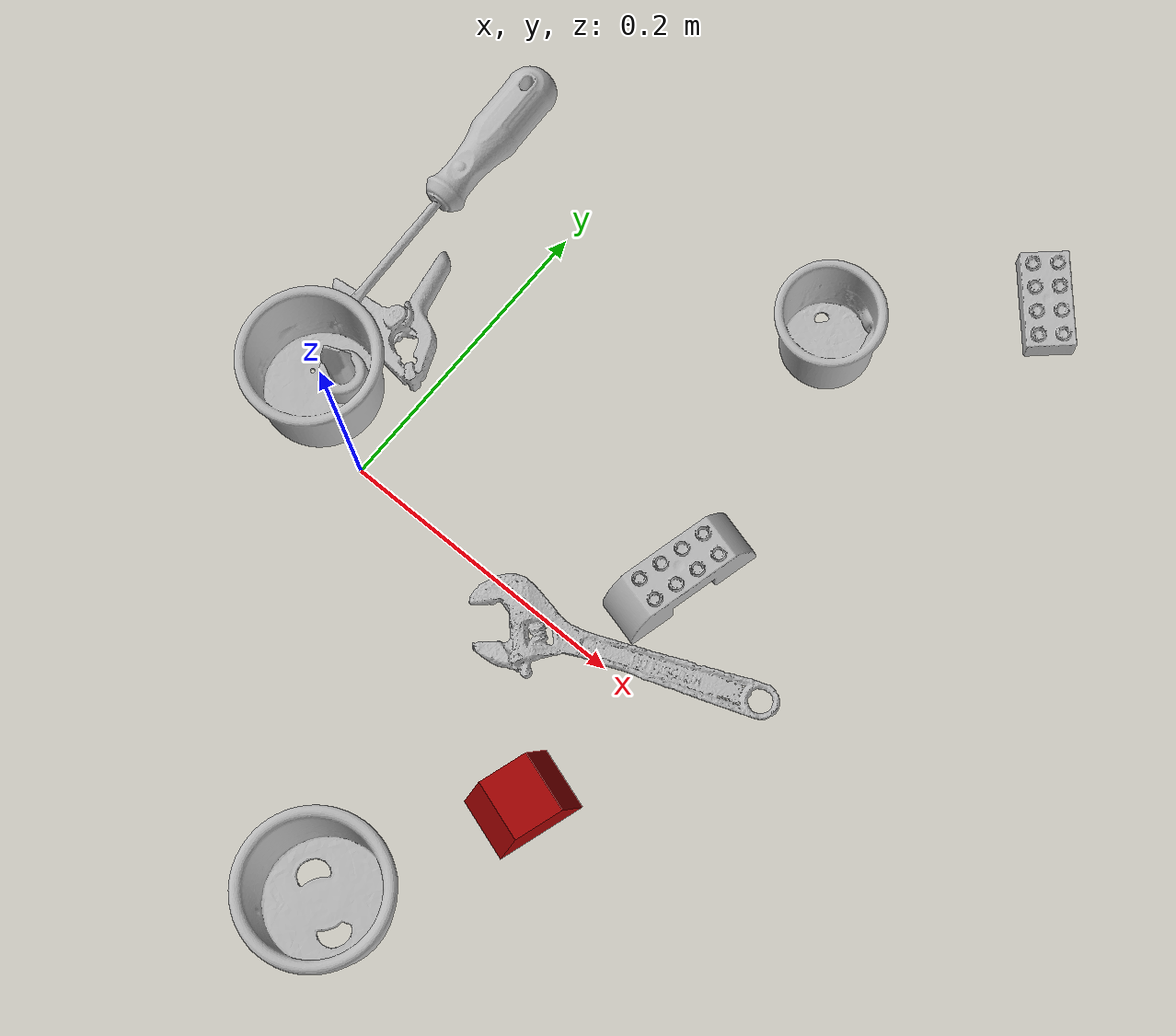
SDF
<sdf version="1.4">
  <world name="default">
    <light name="light1" type="point">
      <pose>0 0 1 0 0 0</pose>
      <diffuse>3 3 3 1</diffuse>
      <specular>3 3 3 1</specular>
    </light>
    <light name="light2" type="point">
      <pose>0 0.5 2 0 0 0</pose>
      <diffuse>1 1 1 1</diffuse>
      <specular>1 1 1 1</specular>
    </light>
    <light name="light3" type="point">
      <pose>0 0.5 2 0 0 0</pose>
      <diffuse>3 3 3 1</diffuse>
      <specular>3 3 3 1</specular>
    </light>
    <scene>
      <ambient>0.7 0.7 0.7</ambient>
    </scene>
    <model name="cup1">
      <link name="link_cup1">
        <collision name="default">
          <geometry>
            <mesh>
              <uri>model://d_cups/collision_meshes/collision.obj</uri>
              <scale>1.0 1.0 1.0</scale>
            </mesh>
          </geometry>
          <surface>
            <friction>
              <ode>
                <mu>0.5</mu>
                <mu2>0.5</mu2>
              </ode>
            </friction>
          <contact>
        <ode>
            <max_vel>0</max_vel>
            <min_depth>0.0001</min_depth>
            <kp>1e8</kp>
        </ode>
    </contact></surface>
        </collision>
        <visual name="default">
          <geometry>
            <mesh>
              <uri>model://d_cups/visual_meshes/visual.dae</uri>
              <scale>1.0 1.0 1.0</scale>
            </mesh>
          </geometry>
        </visual>
        <inertial>
          <mass>0.06783133745193481</mass>
          <pose>0.0008068059105426073 0.0019117397023364902 -0.002266651252284646 0.24012426461604838 -0.24709695541432683 0.5942481546461544</pose>
          <inertia>
            <ixx>5.679078e-05</ixx>
            <iyy>5.662642e-05</iyy>
            <izz>5.1405317e-05</izz>
            <ixy>0</ixy>
            <ixz>0</ixz>
            <iyz>0</iyz>
          </inertia>
        </inertial>
      </link>
      <pose>0.17518436908721924 0.2497675120830536 0.0346590057015419 2.4962270960707947e-08 -1.3483192533188287e-08 -1.3413213164640088</pose>
    </model>
    <model name="cup2">
      <link name="link_cup2">
        <collision name="default">
          <geometry>
            <mesh>
              <uri>model://h_cups/collision_meshes/collision.obj</uri>
              <scale>1.0 1.0 1.0</scale>
            </mesh>
          </geometry>
          <surface>
            <friction>
              <ode>
                <mu>0.5</mu>
                <mu2>0.5</mu2>
              </ode>
            </friction>
          <contact>
        <ode>
            <max_vel>0</max_vel>
            <min_depth>0.0001</min_depth>
            <kp>1e8</kp>
        </ode>
    </contact></surface>
        </collision>
        <visual name="default">
          <geometry>
            <mesh>
              <uri>model://h_cups/visual_meshes/visual.dae</uri>
              <scale>1.0 1.0 1.0</scale>
            </mesh>
          </geometry>
        </visual>
        <inertial>
          <mass>0.0420527309179306</mass>
          <pose>-2.702834171941504e-05 0.0002301869390066713 -0.0018405404407531023 -0.02436231807299455 0.06545237013505961 0.1288477560592675</pose>
          <inertia>
            <ixx>5.430915e-05</ixx>
            <iyy>5.3661057e-05</iyy>
            <izz>5.69554e-05</izz>
            <ixy>0</ixy>
            <ixz>0</ixz>
            <iyz>0</iyz>
          </inertia>
        </inertial>
      </link>
      <pose>-0.05276385322213173 0.02395559661090374 0.0377579964697361 -2.8928597444607135e-08 -3.6649149280841466e-07 -1.086454992639729</pose>
    </model>
    <model name="cup3">
      <link name="link_cup3">
        <collision name="default">
          <geometry>
            <mesh>
              <uri>model://i_cups/collision_meshes/collision.obj</uri>
              <scale>1.0 1.0 1.0</scale>
            </mesh>
          </geometry>
          <surface>
            <friction>
              <ode>
                <mu>0.5</mu>
                <mu2>0.5</mu2>
              </ode>
            </friction>
          <contact>
        <ode>
            <max_vel>0</max_vel>
            <min_depth>0.0001</min_depth>
            <kp>1e8</kp>
        </ode>
    </contact></surface>
        </collision>
        <visual name="default">
          <geometry>
            <mesh>
              <uri>model://i_cups/visual_meshes/visual.dae</uri>
              <scale>1.0 1.0 1.0</scale>
            </mesh>
          </geometry>
        </visual>
        <inertial>
          <mass>0.1172947883605957</mass>
          <pose>0.00011240218736929819 0.00016797319403849542 -0.0008579035638831556 -0.028982974239284674 -0.039873277979934216 -0.3459139003356122</pose>
          <inertia>
            <ixx>0.00016239638</ixx>
            <iyy>0.00016382721</iyy>
            <izz>0.00018150422</izz>
            <ixy>0</ixy>
            <ixz>0</ixz>
            <iyz>0</iyz>
          </inertia>
        </inertial>
      </link>
      <pose>0.1638517826795578 -0.21724000573158264 0.037774745374917984 0.001887553651022637 -0.006397428138433618 2.320500545484409</pose>
    </model>
    <model name="toy1">
      <link name="link_toy1">
        <collision name="default">
          <geometry>
            <mesh>
              <uri>model://prism/collision_meshes/collision.obj</uri>
              <scale>0.5 0.5 0.5</scale>
            </mesh>
          </geometry>
          <surface>
            <friction>
              <ode>
                <mu>0.5</mu>
                <mu2>0.5</mu2>
              </ode>
            </friction>
          <contact>
        <ode>
            <max_vel>0</max_vel>
            <min_depth>0.0001</min_depth>
            <kp>1e8</kp>
        </ode>
    </contact></surface>
        </collision>
        <visual name="default">
          <geometry>
            <mesh>
              <uri>model://prism/visual_meshes/visual.dae</uri>
              <scale>0.5 0.5 0.5</scale>
            </mesh>
          </geometry>
        </visual>
        <inertial>
          <mass>0.04854338616132736</mass>
          <pose>-4.92679828312248e-05 -2.480786349678965e-07 -0.0016934549203142524 0.0 0.006559181697473799 0.0</pose>
          <inertia>
            <ixx>1.0952453e-05</ixx>
            <iyy>1.3236178e-05</iyy>
            <izz>1.6212734e-05</izz>
            <ixy>0</ixy>
            <ixz>0</ixz>
            <iyz>0</iyz>
          </inertia>
        </inertial>
      </link>
      <pose>0.21597568690776825 -0.09652548283338547 0.016085000708699226 -7.696112358512864e-10 1.5544081147792204e-08 1.2598854037183491</pose>
    </model>
    <model name="toy2">
      <link name="link_toy2">
        <collision name="default">
          <geometry>
            <mesh>
              <uri>model://e_toy_airplane/collision_meshes/collision.obj</uri>
              <scale>1.0 1.0 1.0</scale>
            </mesh>
          </geometry>
          <surface>
            <friction>
              <ode>
                <mu>0.5</mu>
                <mu2>0.5</mu2>
              </ode>
            </friction>
          <contact>
        <ode>
            <max_vel>0</max_vel>
            <min_depth>0.0001</min_depth>
            <kp>1e8</kp>
        </ode>
    </contact></surface>
        </collision>
        <visual name="default">
          <geometry>
            <mesh>
              <uri>model://e_toy_airplane/visual_meshes/visual.dae</uri>
              <scale>1.0 1.0 1.0</scale>
            </mesh>
          </geometry>
        </visual>
        <inertial>
          <mass>0.014407381415367126</mass>
          <pose>0.00011740459740394726 -2.2482932763523422e-05 -0.011187206022441387 0.005518488041491648 0.009228285270614433 0.15041380385765837</pose>
          <inertia>
            <ixx>4.397297e-06</ixx>
            <iyy>4.352315e-06</iyy>
            <izz>1.3215607e-06</izz>
            <ixy>0</ixy>
            <ixz>0</ixz>
            <iyz>0</iyz>
          </inertia>
        </inertial>
      </link>
      <pose>-0.04449302703142166 0.03692278638482094 0.04165774583816528 0.0012530412141988879 0.0017674814223727002 -1.3028270236881538</pose>
    </model>
    <model name="toy3">
      <link name="link_toy3">
        <collision name="default">
          <geometry>
            <mesh>
              <uri>model://e_lego_duplo/collision_meshes/collision.obj</uri>
              <scale>1.0 1.0 1.0</scale>
            </mesh>
          </geometry>
          <surface>
            <friction>
              <ode>
                <mu>0.5</mu>
                <mu2>0.5</mu2>
              </ode>
            </friction>
          <contact>
        <ode>
            <max_vel>0</max_vel>
            <min_depth>0.0001</min_depth>
            <kp>1e8</kp>
        </ode>
    </contact></surface>
        </collision>
        <visual name="default">
          <geometry>
            <mesh>
              <uri>model://e_lego_duplo/visual_meshes/visual.dae</uri>
              <scale>1.0 1.0 1.0</scale>
            </mesh>
          </geometry>
        </visual>
        <inertial>
          <mass>0.059077512472867966</mass>
          <pose>0.00032560460385866463 0.0002348544221604243 0.0019521447829902172 -0.0225678114641467 -6.824730634042773e-05 -0.007625154901652298</pose>
          <inertia>
            <ixx>1.2319611e-05</ixx>
            <iyy>5.0562856e-05</iyy>
            <izz>4.923807e-05</izz>
            <ixy>0</ixy>
            <ixz>0</ixz>
            <iyz>0</iyz>
          </inertia>
        </inertial>
      </link>
      <pose>0.20047739148139954 0.07245167344808578 0.02180890366435051 1.0796257920028867e-06 8.211004678822176e-06 1.3191942004109813</pose>
    </model>
    <model name="toy4">
      <link name="link_toy4">
        <collision name="default">
          <geometry>
            <mesh>
              <uri>model://c_lego_duplo/collision_meshes/collision.obj</uri>
              <scale>1.0 1.0 1.0</scale>
            </mesh>
          </geometry>
          <surface>
            <friction>
              <ode>
                <mu>0.5</mu>
                <mu2>0.5</mu2>
              </ode>
            </friction>
          <contact>
        <ode>
            <max_vel>0</max_vel>
            <min_depth>0.0001</min_depth>
            <kp>1e8</kp>
        </ode>
    </contact></surface>
        </collision>
        <visual name="default">
          <geometry>
            <mesh>
              <uri>model://c_lego_duplo/visual_meshes/visual.dae</uri>
              <scale>1.0 1.0 1.0</scale>
            </mesh>
          </geometry>
        </visual>
        <inertial>
          <mass>0.019630447030067444</mass>
          <pose>0.000316459103487432 0.00019464583601802588 0.0010453149443492293 -0.011520787241280632 0.0059000791517924015 0.031100331826339908</pose>
          <inertia>
            <ixx>7.554163e-06</ixx>
            <iyy>2.4130718e-06</iyy>
            <izz>8.827816e-06</izz>
            <ixy>0</ixy>
            <ixz>0</ixz>
            <iyz>0</iyz>
          </inertia>
        </inertial>
      </link>
      <pose>0.2668968439102173 0.36021775007247925 0.011981488205492496 0.00801828562506546 -0.0020910701238088256 0.70343749729241</pose>
    </model>
    <model name="hardware1">
      <link name="link_hardware1">
        <collision name="default">
          <geometry>
            <mesh>
              <uri>model://flat_screwdriver/collision_meshes/collision.obj</uri>
              <scale>1.0 1.0 1.0</scale>
            </mesh>
          </geometry>
          <surface>
            <friction>
              <ode>
                <mu>0.5</mu>
                <mu2>0.5</mu2>
              </ode>
            </friction>
          <contact>
        <ode>
            <max_vel>0</max_vel>
            <min_depth>0.0001</min_depth>
            <kp>1e8</kp>
        </ode>
    </contact></surface>
        </collision>
        <visual name="default">
          <geometry>
            <mesh>
              <uri>model://flat_screwdriver/visual_meshes/visual.dae</uri>
              <scale>1.0 1.0 1.0</scale>
            </mesh>
          </geometry>
        </visual>
        <inertial>
          <mass>0.05795019492506981</mass>
          <pose>-0.0489187128841877 -0.0006576800369657576 -0.0006140916375443339 -0.5616548332173045 -0.0032337243504420286 0.0069822829580931615</pose>
          <inertia>
            <ixx>6.846775e-06</ixx>
            <iyy>8.6921296e-05</iyy>
            <izz>8.688106e-05</izz>
            <ixy>0</ixy>
            <ixz>0</ixz>
            <iyz>0</iyz>
          </inertia>
        </inertial>
      </link>
      <pose>-0.07508354634046555 0.1706942617893219 0.019171681255102158 -0.16918713043314215 -0.019851932414079232 -1.536010145723466</pose>
    </model>
    <model name="hardware2">
      <link name="link_hardware2">
        <collision name="default">
          <geometry>
            <mesh>
              <uri>model://medium_clamp/collision_meshes/collision.obj</uri>
              <scale>1.0 1.0 1.0</scale>
            </mesh>
          </geometry>
          <surface>
            <friction>
              <ode>
                <mu>0.5</mu>
                <mu2>0.5</mu2>
              </ode>
            </friction>
          <contact>
        <ode>
            <max_vel>0</max_vel>
            <min_depth>0.0001</min_depth>
            <kp>1e8</kp>
        </ode>
    </contact></surface>
        </collision>
        <visual name="default">
          <geometry>
            <mesh>
              <uri>model://medium_clamp/visual_meshes/visual.dae</uri>
              <scale>1.0 1.0 1.0</scale>
            </mesh>
          </geometry>
        </visual>
        <inertial>
          <mass>0.028340468183159828</mass>
          <pose>0.0053909942507743835 0.0003953247796744108 -0.0001222157443407923 -0.001226920261124021 0.0025845025680982987 0.03820769890719856</pose>
          <inertia>
            <ixx>7.720961e-06</ixx>
            <iyy>1.1236185e-05</iyy>
            <izz>1.7307093e-05</izz>
            <ixy>0</ixy>
            <ixz>0</ixz>
            <iyz>0</iyz>
          </inertia>
        </inertial>
      </link>
      <pose>-0.042973149567842484 0.08819246292114258 0.013607271015644073 0.08964135024503662 -0.08218786432129503 -0.6678237705973652</pose>
    </model>
    <model name="hardware3">
      <link name="link_hardware3">
        <collision name="default">
          <geometry>
            <mesh>
              <uri>model://adjustable_wrench/collision_meshes/collision.obj</uri>
              <scale>1.0 1.0 1.0</scale>
            </mesh>
          </geometry>
          <surface>
            <friction>
              <ode>
                <mu>0.5</mu>
                <mu2>0.5</mu2>
              </ode>
            </friction>
          <contact>
        <ode>
            <max_vel>0</max_vel>
            <min_depth>0.0001</min_depth>
            <kp>1e8</kp>
        </ode>
    </contact></surface>
        </collision>
        <visual name="default">
          <geometry>
            <mesh>
              <uri>model://adjustable_wrench/visual_meshes/visual.dae</uri>
              <scale>1.0 1.0 1.0</scale>
            </mesh>
          </geometry>
        </visual>
        <inertial>
          <mass>0.023935195058584213</mass>
          <pose>0.03740980476140976 -0.0028968877159059048 -0.001114922808483243 -0.014473210185193002 0.006656019736435525 -0.010954188403863873</pose>
          <inertia>
            <ixx>4.898683e-06</ixx>
            <iyy>5.733333e-05</iyy>
            <izz>6.197185e-05</izz>
            <ixy>0</ixy>
            <ixz>0</ixz>
            <iyz>0</iyz>
          </inertia>
        </inertial>
      </link>
      <pose>0.2019907832145691 0.007785977330058813 0.0061250408180058 0.04675889753949285 -0.02927069681442801 -2.7779181227146768</pose>
    </model>
  <physics type="ode">
      <max_contacts>50</max_contacts>
      <ode>
        <solver>
          <type>quick</type>
          <iters>75</iters>
        </solver>
        <constraints>
          <contact_max_correcting_vel>0</contact_max_correcting_vel>
          <contact_surface_layer>0</contact_surface_layer>
        </constraints>
      </ode>
    </physics></world>
</sdf>
